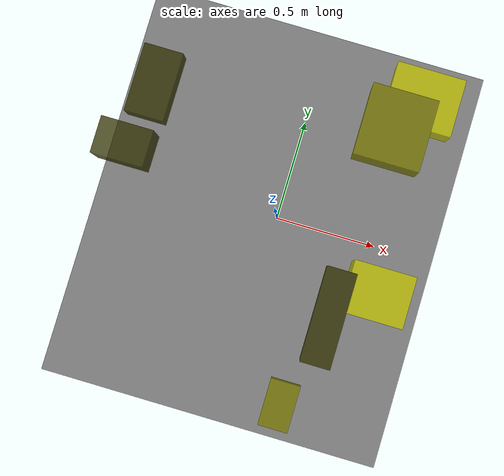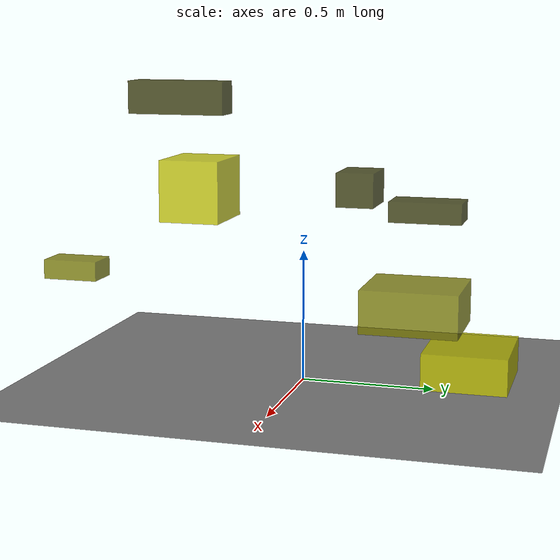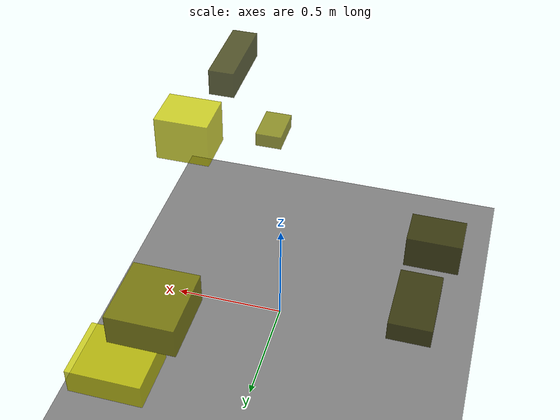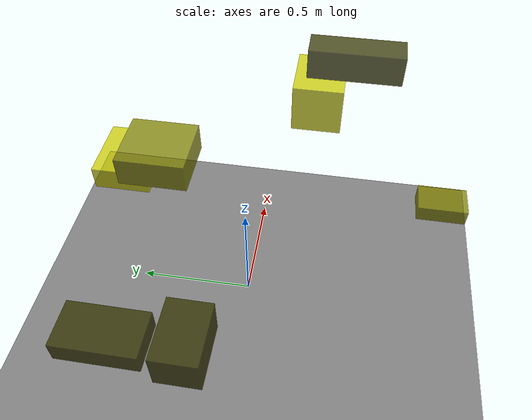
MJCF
<?xml version="1.0"?>
<mujoco model="obstacle_scene">
  <compiler angle="radian" coordinate="local"/>
  <option timestep="0.001" gravity="0 0 -9.81"/>

  <asset>
    <material name="obstacle_mat" rgba="0.8 0.8 0.0 0.8"/>
    <material name="ground_mat" rgba="0.5 0.5 0.5 1"/>
  </asset>

  <worldbody>
    <!-- Ground plane -->
    <geom name="ground" type="plane" size="3 3 0.1" material="ground_mat"/>

    <!-- Obstacles -->
    <body name="obstacle_0" pos="-0.641000 0.361937 0.575006">
      <geom name="obs_0" type="box" size="0.086293 0.151294 0.043062" rgba="0.2 0.2 0.0 0.8"/>
    </body>
    <body name="obstacle_1" pos="0.258267 -0.813372 0.440051">
      <geom name="obs_1" type="box" size="0.066731 0.103009 0.035788" rgba="0.5 0.5 0.0 0.8"/>
    </body>
    <body name="obstacle_2" pos="0.511611 0.700356 0.250449">
      <geom name="obs_2" type="box" size="0.163289 0.138464 0.059805" rgba="0.8 0.8 0.0 0.8"/>
    </body>
    <body name="obstacle_3" pos="-0.667447 0.067418 0.657676">
      <geom name="obs_3" type="box" size="0.111318 0.079261 0.072075" rgba="0.2 0.2 0.0 0.8"/>
    </body>
    <body name="obstacle_4" pos="0.410427 0.497931 0.406703">
      <geom name="obs_4" type="box" size="0.150598 0.165474 0.074188" rgba="0.5 0.5 0.0 0.8"/>
    </body>
    <body name="obstacle_5" pos="0.493443 -0.239097 0.791129">
      <geom name="obs_5" type="box" size="0.122529 0.103563 0.104571" rgba="0.8 0.8 0.0 0.8"/>
    </body>
    <body name="obstacle_6" pos="0.319493 -0.371701 1.087954">
      <geom name="obs_6" type="box" size="0.054880 0.174742 0.058000" rgba="0.2 0.2 0.0 0.8"/>
    </body>
  </worldbody>
</mujoco>
